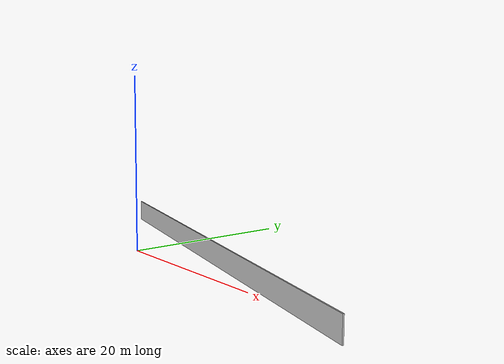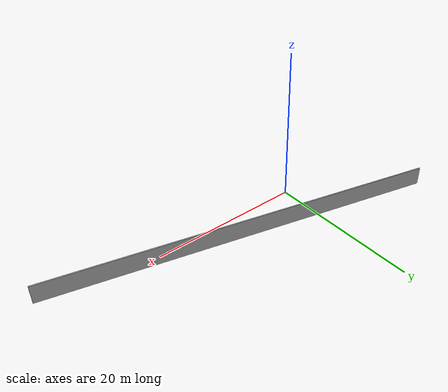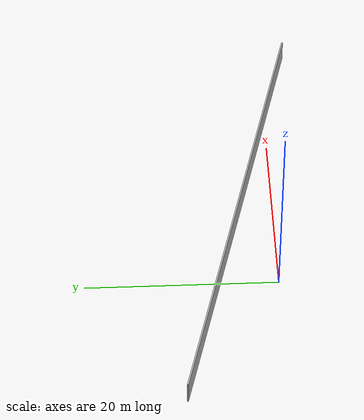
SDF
<?xml version="1.0" ?>
<sdf version="1.6">
  <model name="sps_1106">
    <pose frame="">0 0 0 0 -0 0</pose>
    <static>0</static>
    <self_collide>0</self_collide>
    <allow_auto_disable>0</allow_auto_disable>
    <link name="Wall180">
      <kinematic>0</kinematic>
      <gravity>1</gravity>
      <self_collide>0</self_collide>
      <collision name="collision">
        <geometry>
          <box>
            <size>51.5805 0.15 2.5</size>
          </box>
        </geometry>
        <pose frame="">0 0 0 0 -0 0</pose>
      </collision>
      <visual name="visual">
        <geometry>
          <box>
            <size>51.5805 0.15 2.5</size>
          </box>
        </geometry>
        <pose frame="">0 0 0 0 -0 0</pose>
        <cast_shadows>1</cast_shadows>
        <transparency>0.0</transparency>
      </visual>
      <pose frame="">9.46944 3.69687 1.25 0 -0 2.89341</pose>
    </link>
  </model>
</sdf>
